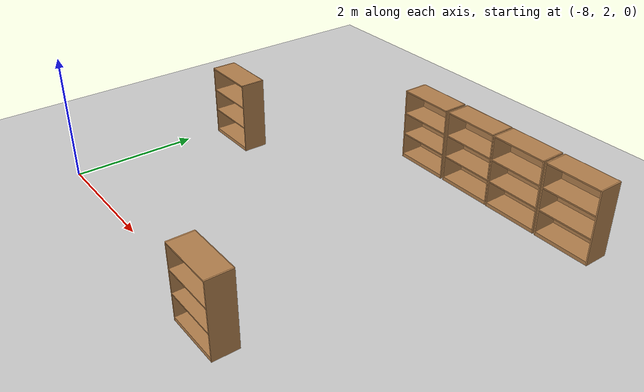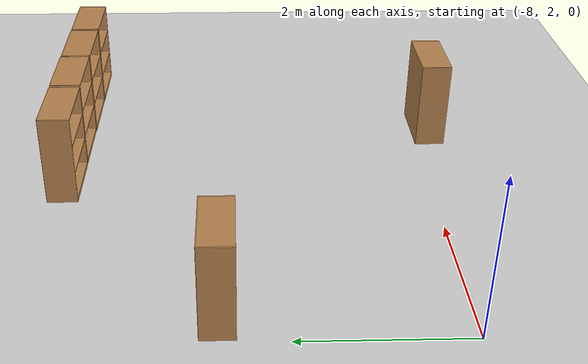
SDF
<sdf version="1.4">
 <world name="world_test_2">
  <model name="ground_plane">
   <static>1</static>
   <link name="link">
    <collision name="collision">
     <geometry><plane><normal>0 0 1</normal><size>100 100</size></plane></geometry>
     <surface><friction><ode><mu>100</mu><mu2>50</mu2></ode></friction></surface>
    </collision>
    <visual name="visual">
     <cast_shadows>0</cast_shadows>
     <geometry><plane><normal>0 0 1</normal><size>100 100</size></plane></geometry>
     <material>
      <script><uri>file://media/materials/scripts/gazebo.material</uri><name>Gazebo/Grey</name></script>
     </material>
    </visual>
    <velocity_decay><linear>0</linear><angular>0</angular></velocity_decay>
   </link>
  </model>
  <model name="bookshelf">
   <static>1</static>
   <link name="link">
    <inertial><mass>1</mass></inertial>
    <collision name="back">
     <pose>0 0.005 0.6 0 -0 0</pose>
     <geometry><box><size>0.9 0.01 1.2</size></box></geometry>
    </collision>
    <visual name="visual1">
     <pose>0 0.005 0.6 0 -0 0</pose>
     <geometry><box><size>0.9 0.01 1.2</size></box></geometry>
     <material>
      <script><uri>file://media/materials/scripts/gazebo.material</uri><name>Gazebo/Wood</name></script>
     </material>
    </visual>
    <collision name="left_side">
     <pose>0.45 -0.195 0.6 0 -0 0</pose>
     <geometry><box><size>0.02 0.4 1.2</size></box></geometry>
    </collision>
    <visual name="visual2">
     <pose>0.45 -0.195 0.6 0 -0 0</pose>
     <geometry><box><size>0.02 0.4 1.2</size></box></geometry>
     <material>
      <script><uri>file://media/materials/scripts/gazebo.material</uri><name>Gazebo/Wood</name></script>
     </material>
    </visual>
    <collision name="right_side">
     <pose>-0.45 -0.195 0.6 0 -0 0</pose>
     <geometry><box><size>0.02 0.4 1.2</size></box></geometry>
    </collision>
    <visual name="visual3">
     <pose>-0.45 -0.195 0.6 0 -0 0</pose>
     <geometry><box><size>0.02 0.4 1.2</size></box></geometry>
     <material>
      <script><uri>file://media/materials/scripts/gazebo.material</uri><name>Gazebo/Wood</name></script>
     </material>
    </visual>
    <collision name="bottom">
     <pose>0 -0.195 0.03 0 -0 0</pose>
     <geometry><box><size>0.88 0.4 0.06</size></box></geometry>
    </collision>
    <visual name="visual4">
     <pose>0 -0.195 0.03 0 -0 0</pose>
     <geometry><box><size>0.88 0.4 0.06</size></box></geometry>
     <material>
      <script><uri>file://media/materials/scripts/gazebo.material</uri><name>Gazebo/Wood</name></script>
     </material>
    </visual>
    <collision name="top">
     <pose>0 -0.195 1.19 0 -0 0</pose>
     <geometry><box><size>0.88 0.4 0.02</size></box></geometry>
    </collision>
    <visual name="visual5">
     <pose>0 -0.195 1.19 0 -0 0</pose>
     <geometry><box><size>0.88 0.4 0.02</size></box></geometry>
     <material>
      <script><uri>file://media/materials/scripts/gazebo.material</uri><name>Gazebo/Wood</name></script>
     </material>
    </visual>
    <collision name="low_shelf">
     <pose>0 -0.195 0.43 0 -0 0</pose>
     <geometry><box><size>0.88 0.4 0.02</size></box></geometry>
    </collision>
    <visual name="visual6">
     <pose>0 -0.195 0.43 0 -0 0</pose>
     <geometry><box><size>0.88 0.4 0.02</size></box></geometry>
     <material>
      <script><uri>file://media/materials/scripts/gazebo.material</uri><name>Gazebo/Wood</name></script>
     </material>
    </visual>
    <collision name="high_shelf">
     <pose>0 -0.195 0.8 0 -0 0</pose>
     <geometry><box><size>0.88 0.4 0.02</size></box></geometry>
    </collision>
    <visual name="visual7">
     <pose>0 -0.195 0.8 0 -0 0</pose>
     <geometry><box><size>0.88 0.4 0.02</size></box></geometry>
     <material>
      <script><uri>file://media/materials/scripts/gazebo.material</uri><name>Gazebo/Wood</name></script>
     </material>
    </visual>
    <velocity_decay><linear>0</linear><angular>0</angular></velocity_decay>
   </link>
   <pose>-3.49372 1.98672 0 0 -0 0</pose>
  </model>
  <model name="bookshelf_1">
   <static>1</static>
   <link name="link">
    <inertial><mass>1</mass></inertial>
    <collision name="back">
     <pose>0 0.005 0.6 0 -0 0</pose>
     <geometry><box><size>0.9 0.01 1.2</size></box></geometry>
    </collision>
    <visual name="visual1">
     <pose>0 0.005 0.6 0 -0 0</pose>
     <geometry><box><size>0.9 0.01 1.2</size></box></geometry>
     <material>
      <script><uri>file://media/materials/scripts/gazebo.material</uri><name>Gazebo/Wood</name></script>
     </material>
    </visual>
    <collision name="left_side">
     <pose>0.45 -0.195 0.6 0 -0 0</pose>
     <geometry><box><size>0.02 0.4 1.2</size></box></geometry>
    </collision>
    <visual name="visual2">
     <pose>0.45 -0.195 0.6 0 -0 0</pose>
     <geometry><box><size>0.02 0.4 1.2</size></box></geometry>
     <material>
      <script><uri>file://media/materials/scripts/gazebo.material</uri><name>Gazebo/Wood</name></script>
     </material>
    </visual>
    <collision name="right_side">
     <pose>-0.45 -0.195 0.6 0 -0 0</pose>
     <geometry><box><size>0.02 0.4 1.2</size></box></geometry>
    </collision>
    <visual name="visual3">
     <pose>-0.45 -0.195 0.6 0 -0 0</pose>
     <geometry><box><size>0.02 0.4 1.2</size></box></geometry>
     <material>
      <script><uri>file://media/materials/scripts/gazebo.material</uri><name>Gazebo/Wood</name></script>
     </material>
    </visual>
    <collision name="bottom">
     <pose>0 -0.195 0.03 0 -0 0</pose>
     <geometry><box><size>0.88 0.4 0.06</size></box></geometry>
    </collision>
    <visual name="visual4">
     <pose>0 -0.195 0.03 0 -0 0</pose>
     <geometry><box><size>0.88 0.4 0.06</size></box></geometry>
     <material>
      <script><uri>file://media/materials/scripts/gazebo.material</uri><name>Gazebo/Wood</name></script>
     </material>
    </visual>
    <collision name="top">
     <pose>0 -0.195 1.19 0 -0 0</pose>
     <geometry><box><size>0.88 0.4 0.02</size></box></geometry>
    </collision>
    <visual name="visual5">
     <pose>0 -0.195 1.19 0 -0 0</pose>
     <geometry><box><size>0.88 0.4 0.02</size></box></geometry>
     <material>
      <script><uri>file://media/materials/scripts/gazebo.material</uri><name>Gazebo/Wood</name></script>
     </material>
    </visual>
    <collision name="low_shelf">
     <pose>0 -0.195 0.43 0 -0 0</pose>
     <geometry><box><size>0.88 0.4 0.02</size></box></geometry>
    </collision>
    <visual name="visual6">
     <pose>0 -0.195 0.43 0 -0 0</pose>
     <geometry><box><size>0.88 0.4 0.02</size></box></geometry>
     <material>
      <script><uri>file://media/materials/scripts/gazebo.material</uri><name>Gazebo/Wood</name></script>
     </material>
    </visual>
    <collision name="high_shelf">
     <pose>0 -0.195 0.8 0 -0 0</pose>
     <geometry><box><size>0.88 0.4 0.02</size></box></geometry>
    </collision>
    <visual name="visual7">
     <pose>0 -0.195 0.8 0 -0 0</pose>
     <geometry><box><size>0.88 0.4 0.02</size></box></geometry>
     <material>
      <script><uri>file://media/materials/scripts/gazebo.material</uri><name>Gazebo/Wood</name></script>
     </material>
    </visual>
    <velocity_decay><linear>0</linear><angular>0</angular></velocity_decay>
   </link>
   <pose>-7.50696 4.96643 0 0 -0 0</pose>
  </model>
  <model name="bookshelf_3">
   <static>1</static>
   <link name="link">
    <inertial><mass>1</mass></inertial>
    <collision name="back">
     <pose>0 0.005 0.6 0 -0 0</pose>
     <geometry><box><size>0.9 0.01 1.2</size></box></geometry>
    </collision>
    <visual name="visual1">
     <pose>0 0.005 0.6 0 -0 0</pose>
     <geometry><box><size>0.9 0.01 1.2</size></box></geometry>
     <material>
      <script><uri>file://media/materials/scripts/gazebo.material</uri><name>Gazebo/Wood</name></script>
     </material>
    </visual>
    <collision name="left_side">
     <pose>0.45 -0.195 0.6 0 -0 0</pose>
     <geometry><box><size>0.02 0.4 1.2</size></box></geometry>
    </collision>
    <visual name="visual2">
     <pose>0.45 -0.195 0.6 0 -0 0</pose>
     <geometry><box><size>0.02 0.4 1.2</size></box></geometry>
     <material>
      <script><uri>file://media/materials/scripts/gazebo.material</uri><name>Gazebo/Wood</name></script>
     </material>
    </visual>
    <collision name="right_side">
     <pose>-0.45 -0.195 0.6 0 -0 0</pose>
     <geometry><box><size>0.02 0.4 1.2</size></box></geometry>
    </collision>
    <visual name="visual3">
     <pose>-0.45 -0.195 0.6 0 -0 0</pose>
     <geometry><box><size>0.02 0.4 1.2</size></box></geometry>
     <material>
      <script><uri>file://media/materials/scripts/gazebo.material</uri><name>Gazebo/Wood</name></script>
     </material>
    </visual>
    <collision name="bottom">
     <pose>0 -0.195 0.03 0 -0 0</pose>
     <geometry><box><size>0.88 0.4 0.06</size></box></geometry>
    </collision>
    <visual name="visual4">
     <pose>0 -0.195 0.03 0 -0 0</pose>
     <geometry><box><size>0.88 0.4 0.06</size></box></geometry>
     <material>
      <script><uri>file://media/materials/scripts/gazebo.material</uri><name>Gazebo/Wood</name></script>
     </material>
    </visual>
    <collision name="top">
     <pose>0 -0.195 1.19 0 -0 0</pose>
     <geometry><box><size>0.88 0.4 0.02</size></box></geometry>
    </collision>
    <visual name="visual5">
     <pose>0 -0.195 1.19 0 -0 0</pose>
     <geometry><box><size>0.88 0.4 0.02</size></box></geometry>
     <material>
      <script><uri>file://media/materials/scripts/gazebo.material</uri><name>Gazebo/Wood</name></script>
     </material>
    </visual>
    <collision name="low_shelf">
     <pose>0 -0.195 0.43 0 -0 0</pose>
     <geometry><box><size>0.88 0.4 0.02</size></box></geometry>
    </collision>
    <visual name="visual6">
     <pose>0 -0.195 0.43 0 -0 0</pose>
     <geometry><box><size>0.88 0.4 0.02</size></box></geometry>
     <material>
      <script><uri>file://media/materials/scripts/gazebo.material</uri><name>Gazebo/Wood</name></script>
     </material>
    </visual>
    <collision name="high_shelf">
     <pose>0 -0.195 0.8 0 -0 0</pose>
     <geometry><box><size>0.88 0.4 0.02</size></box></geometry>
    </collision>
    <visual name="visual7">
     <pose>0 -0.195 0.8 0 -0 0</pose>
     <geometry><box><size>0.88 0.4 0.02</size></box></geometry>
     <material>
      <script><uri>file://media/materials/scripts/gazebo.material</uri><name>Gazebo/Wood</name></script>
     </material>
    </visual>
    <velocity_decay><linear>0</linear><angular>0</angular></velocity_decay>
   </link>
   <pose>-2.04759 6.98349 0 0 -0 0</pose>
  </model>
  <model name="bookshelf_4">
   <static>1</static>
   <link name="link">
    <inertial><mass>1</mass></inertial>
    <collision name="back">
     <pose>0 0.005 0.6 0 -0 0</pose>
     <geometry><box><size>0.9 0.01 1.2</size></box></geometry>
    </collision>
    <visual name="visual1">
     <pose>0 0.005 0.6 0 -0 0</pose>
     <geometry><box><size>0.9 0.01 1.2</size></box></geometry>
     <material>
      <script><uri>file://media/materials/scripts/gazebo.material</uri><name>Gazebo/Wood</name></script>
     </material>
    </visual>
    <collision name="left_side">
     <pose>0.45 -0.195 0.6 0 -0 0</pose>
     <geometry><box><size>0.02 0.4 1.2</size></box></geometry>
    </collision>
    <visual name="visual2">
     <pose>0.45 -0.195 0.6 0 -0 0</pose>
     <geometry><box><size>0.02 0.4 1.2</size></box></geometry>
     <material>
      <script><uri>file://media/materials/scripts/gazebo.material</uri><name>Gazebo/Wood</name></script>
     </material>
    </visual>
    <collision name="right_side">
     <pose>-0.45 -0.195 0.6 0 -0 0</pose>
     <geometry><box><size>0.02 0.4 1.2</size></box></geometry>
    </collision>
    <visual name="visual3">
     <pose>-0.45 -0.195 0.6 0 -0 0</pose>
     <geometry><box><size>0.02 0.4 1.2</size></box></geometry>
     <material>
      <script><uri>file://media/materials/scripts/gazebo.material</uri><name>Gazebo/Wood</name></script>
     </material>
    </visual>
    <collision name="bottom">
     <pose>0 -0.195 0.03 0 -0 0</pose>
     <geometry><box><size>0.88 0.4 0.06</size></box></geometry>
    </collision>
    <visual name="visual4">
     <pose>0 -0.195 0.03 0 -0 0</pose>
     <geometry><box><size>0.88 0.4 0.06</size></box></geometry>
     <material>
      <script><uri>file://media/materials/scripts/gazebo.material</uri><name>Gazebo/Wood</name></script>
     </material>
    </visual>
    <collision name="top">
     <pose>0 -0.195 1.19 0 -0 0</pose>
     <geometry><box><size>0.88 0.4 0.02</size></box></geometry>
    </collision>
    <visual name="visual5">
     <pose>0 -0.195 1.19 0 -0 0</pose>
     <geometry><box><size>0.88 0.4 0.02</size></box></geometry>
     <material>
      <script><uri>file://media/materials/scripts/gazebo.material</uri><name>Gazebo/Wood</name></script>
     </material>
    </visual>
    <collision name="low_shelf">
     <pose>0 -0.195 0.43 0 -0 0</pose>
     <geometry><box><size>0.88 0.4 0.02</size></box></geometry>
    </collision>
    <visual name="visual6">
     <pose>0 -0.195 0.43 0 -0 0</pose>
     <geometry><box><size>0.88 0.4 0.02</size></box></geometry>
     <material>
      <script><uri>file://media/materials/scripts/gazebo.material</uri><name>Gazebo/Wood</name></script>
     </material>
    </visual>
    <collision name="high_shelf">
     <pose>0 -0.195 0.8 0 -0 0</pose>
     <geometry><box><size>0.88 0.4 0.02</size></box></geometry>
    </collision>
    <visual name="visual7">
     <pose>0 -0.195 0.8 0 -0 0</pose>
     <geometry><box><size>0.88 0.4 0.02</size></box></geometry>
     <material>
      <script><uri>file://media/materials/scripts/gazebo.material</uri><name>Gazebo/Wood</name></script>
     </material>
    </visual>
    <velocity_decay><linear>0</linear><angular>0</angular></velocity_decay>
   </link>
   <pose>-2.99588 6.98711 0 0 -0 0</pose>
  </model>
  <model name="bookshelf_5">
   <static>1</static>
   <link name="link">
    <inertial><mass>1</mass></inertial>
    <collision name="back">
     <pose>0 0.005 0.6 0 -0 0</pose>
     <geometry><box><size>0.9 0.01 1.2</size></box></geometry>
    </collision>
    <visual name="visual1">
     <pose>0 0.005 0.6 0 -0 0</pose>
     <geometry><box><size>0.9 0.01 1.2</size></box></geometry>
     <material>
      <script><uri>file://media/materials/scripts/gazebo.material</uri><name>Gazebo/Wood</name></script>
     </material>
    </visual>
    <collision name="left_side">
     <pose>0.45 -0.195 0.6 0 -0 0</pose>
     <geometry><box><size>0.02 0.4 1.2</size></box></geometry>
    </collision>
    <visual name="visual2">
     <pose>0.45 -0.195 0.6 0 -0 0</pose>
     <geometry><box><size>0.02 0.4 1.2</size></box></geometry>
     <material>
      <script><uri>file://media/materials/scripts/gazebo.material</uri><name>Gazebo/Wood</name></script>
     </material>
    </visual>
    <collision name="right_side">
     <pose>-0.45 -0.195 0.6 0 -0 0</pose>
     <geometry><box><size>0.02 0.4 1.2</size></box></geometry>
    </collision>
    <visual name="visual3">
     <pose>-0.45 -0.195 0.6 0 -0 0</pose>
     <geometry><box><size>0.02 0.4 1.2</size></box></geometry>
     <material>
      <script><uri>file://media/materials/scripts/gazebo.material</uri><name>Gazebo/Wood</name></script>
     </material>
    </visual>
    <collision name="bottom">
     <pose>0 -0.195 0.03 0 -0 0</pose>
     <geometry><box><size>0.88 0.4 0.06</size></box></geometry>
    </collision>
    <visual name="visual4">
     <pose>0 -0.195 0.03 0 -0 0</pose>
     <geometry><box><size>0.88 0.4 0.06</size></box></geometry>
     <material>
      <script><uri>file://media/materials/scripts/gazebo.material</uri><name>Gazebo/Wood</name></script>
     </material>
    </visual>
    <collision name="top">
     <pose>0 -0.195 1.19 0 -0 0</pose>
     <geometry><box><size>0.88 0.4 0.02</size></box></geometry>
    </collision>
    <visual name="visual5">
     <pose>0 -0.195 1.19 0 -0 0</pose>
     <geometry><box><size>0.88 0.4 0.02</size></box></geometry>
     <material>
      <script><uri>file://media/materials/scripts/gazebo.material</uri><name>Gazebo/Wood</name></script>
     </material>
    </visual>
    <collision name="low_shelf">
     <pose>0 -0.195 0.43 0 -0 0</pose>
     <geometry><box><size>0.88 0.4 0.02</size></box></geometry>
    </collision>
    <visual name="visual6">
     <pose>0 -0.195 0.43 0 -0 0</pose>
     <geometry><box><size>0.88 0.4 0.02</size></box></geometry>
     <material>
      <script><uri>file://media/materials/scripts/gazebo.material</uri><name>Gazebo/Wood</name></script>
     </material>
    </visual>
    <collision name="high_shelf">
     <pose>0 -0.195 0.8 0 -0 0</pose>
     <geometry><box><size>0.88 0.4 0.02</size></box></geometry>
    </collision>
    <visual name="visual7">
     <pose>0 -0.195 0.8 0 -0 0</pose>
     <geometry><box><size>0.88 0.4 0.02</size></box></geometry>
     <material>
      <script><uri>file://media/materials/scripts/gazebo.material</uri><name>Gazebo/Wood</name></script>
     </material>
    </visual>
    <velocity_decay><linear>0</linear><angular>0</angular></velocity_decay>
   </link>
   <pose>-3.92684 6.99296 0 0 -0 0</pose>
  </model>
  <model name="bookshelf_6">
   <static>1</static>
   <link name="link">
    <inertial><mass>1</mass></inertial>
    <collision name="back">
     <pose>0 0.005 0.6 0 -0 0</pose>
     <geometry><box><size>0.9 0.01 1.2</size></box></geometry>
    </collision>
    <visual name="visual1">
     <pose>0 0.005 0.6 0 -0 0</pose>
     <geometry><box><size>0.9 0.01 1.2</size></box></geometry>
     <material>
      <script><uri>file://media/materials/scripts/gazebo.material</uri><name>Gazebo/Wood</name></script>
     </material>
    </visual>
    <collision name="left_side">
     <pose>0.45 -0.195 0.6 0 -0 0</pose>
     <geometry><box><size>0.02 0.4 1.2</size></box></geometry>
    </collision>
    <visual name="visual2">
     <pose>0.45 -0.195 0.6 0 -0 0</pose>
     <geometry><box><size>0.02 0.4 1.2</size></box></geometry>
     <material>
      <script><uri>file://media/materials/scripts/gazebo.material</uri><name>Gazebo/Wood</name></script>
     </material>
    </visual>
    <collision name="right_side">
     <pose>-0.45 -0.195 0.6 0 -0 0</pose>
     <geometry><box><size>0.02 0.4 1.2</size></box></geometry>
    </collision>
    <visual name="visual3">
     <pose>-0.45 -0.195 0.6 0 -0 0</pose>
     <geometry><box><size>0.02 0.4 1.2</size></box></geometry>
     <material>
      <script><uri>file://media/materials/scripts/gazebo.material</uri><name>Gazebo/Wood</name></script>
     </material>
    </visual>
    <collision name="bottom">
     <pose>0 -0.195 0.03 0 -0 0</pose>
     <geometry><box><size>0.88 0.4 0.06</size></box></geometry>
    </collision>
    <visual name="visual4">
     <pose>0 -0.195 0.03 0 -0 0</pose>
     <geometry><box><size>0.88 0.4 0.06</size></box></geometry>
     <material>
      <script><uri>file://media/materials/scripts/gazebo.material</uri><name>Gazebo/Wood</name></script>
     </material>
    </visual>
    <collision name="top">
     <pose>0 -0.195 1.19 0 -0 0</pose>
     <geometry><box><size>0.88 0.4 0.02</size></box></geometry>
    </collision>
    <visual name="visual5">
     <pose>0 -0.195 1.19 0 -0 0</pose>
     <geometry><box><size>0.88 0.4 0.02</size></box></geometry>
     <material>
      <script><uri>file://media/materials/scripts/gazebo.material</uri><name>Gazebo/Wood</name></script>
     </material>
    </visual>
    <collision name="low_shelf">
     <pose>0 -0.195 0.43 0 -0 0</pose>
     <geometry><box><size>0.88 0.4 0.02</size></box></geometry>
    </collision>
    <visual name="visual6">
     <pose>0 -0.195 0.43 0 -0 0</pose>
     <geometry><box><size>0.88 0.4 0.02</size></box></geometry>
     <material>
      <script><uri>file://media/materials/scripts/gazebo.material</uri><name>Gazebo/Wood</name></script>
     </material>
    </visual>
    <collision name="high_shelf">
     <pose>0 -0.195 0.8 0 -0 0</pose>
     <geometry><box><size>0.88 0.4 0.02</size></box></geometry>
    </collision>
    <visual name="visual7">
     <pose>0 -0.195 0.8 0 -0 0</pose>
     <geometry><box><size>0.88 0.4 0.02</size></box></geometry>
     <material>
      <script><uri>file://media/materials/scripts/gazebo.material</uri><name>Gazebo/Wood</name></script>
     </material>
    </visual>
    <velocity_decay><linear>0</linear><angular>0</angular></velocity_decay>
   </link>
   <pose>-4.88305 6.99057 0 0 -0 0</pose>
  </model>
 </world>
</sdf>
